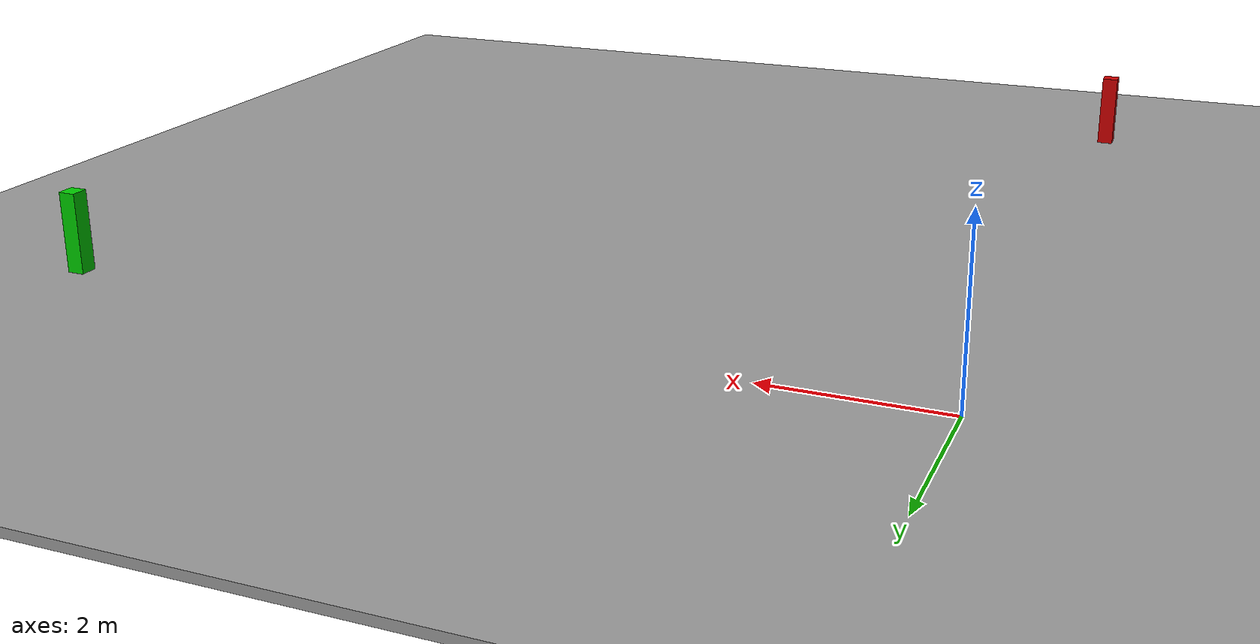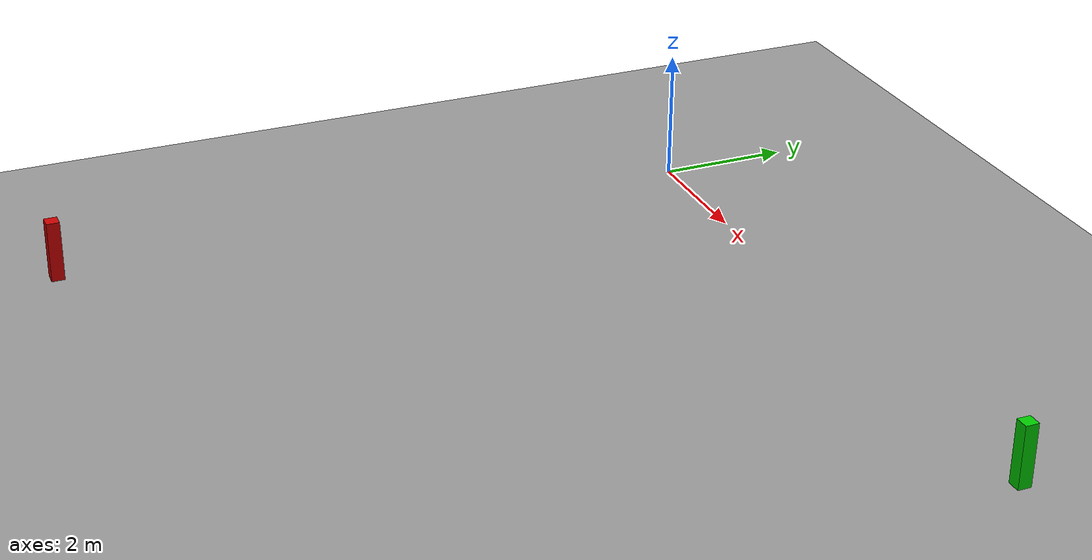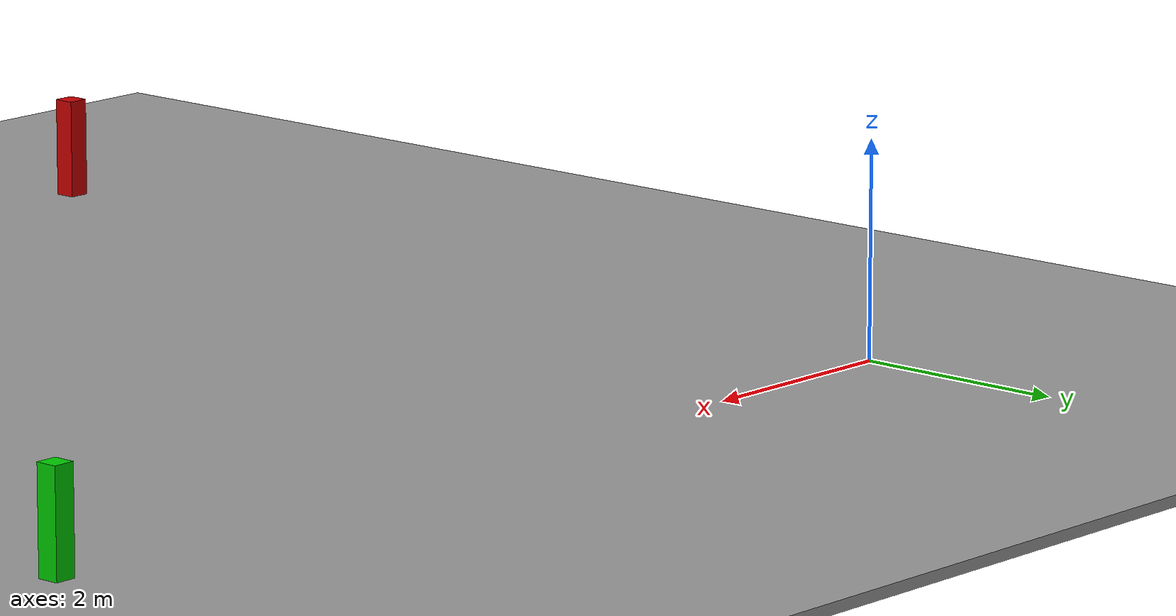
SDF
<?xml version="1.0"?>
<sdf version="1.9">
  <world name="test_world">
    <!-- Physics settings -->
    <physics name="1ms" type="ignored">
      <max_step_size>0.001</max_step_size>
      <real_time_factor>1.0</real_time_factor>
    </physics>

    <!-- Scene settings -->
    <scene>
      <ambient>0.4 0.4 0.4 1</ambient>
      <background>0.7 0.85 1 1</background>
      <shadows>true</shadows>
    </scene>

    <!-- Required plugins for Gazebo Harmonic -->
    <plugin filename="gz-sim-physics-system"
            name="gz::sim::systems::Physics">
    </plugin>
    <plugin filename="gz-sim-user-commands-system"
            name="gz::sim::systems::UserCommands">
    </plugin>
    <plugin filename="gz-sim-scene-broadcaster-system"
            name="gz::sim::systems::SceneBroadcaster">
    </plugin>
    <plugin filename="gz-sim-sensors-system"
            name="gz::sim::systems::Sensors">
      <render_engine>ogre2</render_engine>
    </plugin>
    <plugin filename="gz-sim-imu-system"
            name="gz::sim::systems::Imu">
    </plugin>
    <plugin filename="gz-sim-navsat-system"
            name="gz::sim::systems::NavSat">
    </plugin>

    <!-- Sunlight -->
    <light type="directional" name="sun">
      <cast_shadows>true</cast_shadows>
      <pose>0 0 100 0 0 0</pose>
      <diffuse>0.9 0.9 0.9 1</diffuse>
      <specular>0.2 0.2 0.2 1</specular>
      <attenuation>
        <range>1000</range>
        <constant>0.9</constant>
        <linear>0.01</linear>
        <quadratic>0.001</quadratic>
      </attenuation>
      <direction>-0.5 0.1 -0.9</direction>
    </light>

    <!-- Ground plane (100m x 100m) -->
    <model name="ground_plane">
      <static>true</static>
      <link name="link">
        <collision name="collision">
          <geometry>
            <plane>
              <normal>0 0 1</normal>
              <size>100 100</size>
            </plane>
          </geometry>
        </collision>
        <visual name="visual">
          <geometry>
            <plane>
              <normal>0 0 1</normal>
              <size>100 100</size>
            </plane>
          </geometry>
          <material>
            <ambient>0.5 0.5 0.5 1</ambient>
            <diffuse>0.5 0.5 0.5 1</diffuse>
          </material>
        </visual>
      </link>
    </model>

    <!-- Grid pattern for visual reference -->
    <model name="grid_10m">
      <static>true</static>
      <pose>0 0 0.01 0 0 0</pose>
      <link name="link">
        <visual name="grid_visual">
          <geometry>
            <plane>
              <normal>0 0 1</normal>
              <size>100 100</size>
            </plane>
          </geometry>
          <material>
            <ambient>0.6 0.6 0.6 1</ambient>
            <diffuse>0.6 0.6 0.6 1</diffuse>
          </material>
        </visual>
      </link>
    </model>

    <!-- Spawn point marker (landing pad) -->
    <model name="landing_pad">
      <static>true</static>
      <pose>0 0 0.005 0 0 0</pose>
      <link name="link">
        <visual name="visual">
          <geometry>
            <cylinder>
              <radius>1.0</radius>
              <length>0.01</length>
            </cylinder>
          </geometry>
          <material>
            <ambient>0.8 0.3 0.1 1</ambient>
            <diffuse>0.8 0.3 0.1 1</diffuse>
          </material>
        </visual>
      </link>
    </model>

    <!-- Reference markers at 10m intervals -->
    <model name="marker_10m_north">
      <static>true</static>
      <pose>10 0 0.5 0 0 0</pose>
      <link name="link">
        <visual name="visual">
          <geometry>
            <box>
              <size>0.2 0.2 1.0</size>
            </box>
          </geometry>
          <material>
            <ambient>0 0.8 0 1</ambient>
            <diffuse>0 0.8 0 1</diffuse>
          </material>
        </visual>
      </link>
    </model>

    <model name="marker_10m_east">
      <static>true</static>
      <pose>0 -10 0.5 0 0 0</pose>
      <link name="link">
        <visual name="visual">
          <geometry>
            <box>
              <size>0.2 0.2 1.0</size>
            </box>
          </geometry>
          <material>
            <ambient>0.8 0 0 1</ambient>
            <diffuse>0.8 0 0 1</diffuse>
          </material>
        </visual>
      </link>
    </model>

    <!-- Spherical coordinate system (for GPS simulation) -->
    <spherical_coordinates>
      <surface_model>EARTH_WGS84</surface_model>
      <world_frame_orientation>ENU</world_frame_orientation>
      <latitude_deg>45.0</latitude_deg>
      <longitude_deg>9.0</longitude_deg>
      <elevation>100</elevation>
      <heading_deg>0</heading_deg>
    </spherical_coordinates>

  </world>
</sdf>
